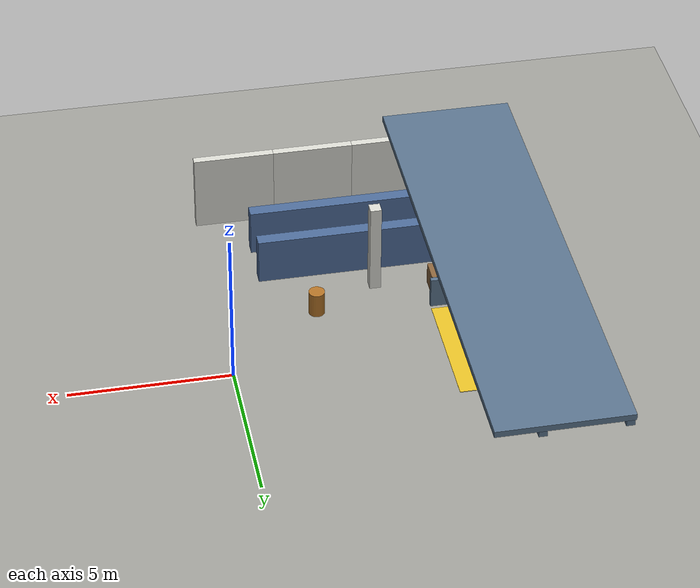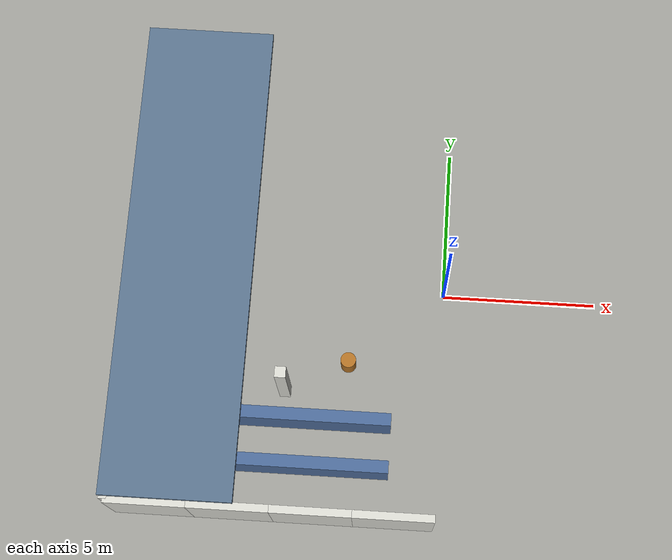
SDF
<sdf version="1.9">
 <world name="default">
  <model name="ground_plane">
   <static>true</static>
   <link name="link">
    <collision name="collision">
     <geometry><plane><normal>0 0 1</normal><size>200 200</size></plane></geometry>
     <surface><friction><ode><mu>1.0</mu><mu2>1.0</mu2></ode></friction></surface>
    </collision>
    <visual name="visual">
     <geometry><plane><normal>0 0 1</normal><size>200 200</size></plane></geometry>
     <material>
      <ambient>0.310 0.310 0.300 1</ambient>
      <diffuse>0.620 0.620 0.600 1</diffuse>
      <specular>0.05 0.05 0.05 1</specular>
      <pbr>
       <metal>
        <albedo_map>materials/textures/concrete.png</albedo_map>
        <metalness>0.0</metalness>
        <roughness>0.9</roughness>
       </metal>
      </pbr>
     </material>
    </visual>
   </link>
  </model>
  <model name="wall_south_0">
   <static>true</static>
   <pose>-8.85938 -7.62500 1.25000 0 0.000000 0</pose>
   <link name="link">
    <collision name="collision">
     <geometry><box><size>2.53125 0.25000 2.50000</size></box></geometry>
     <surface><friction><ode><mu>1.0</mu><mu2>1.0</mu2></ode></friction></surface>
    </collision>
    <visual name="visual">
     <geometry><box><size>2.53125 0.25000 2.50000</size></box></geometry>
     <material>
      <ambient>0.425 0.425 0.410 1</ambient>
      <diffuse>0.850 0.850 0.820 1</diffuse>
      <specular>0.1 0.1 0.1 1</specular>
      <pbr>
       <metal>
        <albedo_map>materials/textures/painted_wall.png</albedo_map>
        <metalness>0.0</metalness>
        <roughness>0.85</roughness>
       </metal>
      </pbr>
     </material>
    </visual>
   </link>
  </model>
  <model name="wall_south_1">
   <static>true</static>
   <pose>-6.32812 -7.62500 1.25000 0 0.000000 0</pose>
   <link name="link">
    <collision name="collision">
     <geometry><box><size>2.53125 0.25000 2.50000</size></box></geometry>
     <surface><friction><ode><mu>1.0</mu><mu2>1.0</mu2></ode></friction></surface>
    </collision>
    <visual name="visual">
     <geometry><box><size>2.53125 0.25000 2.50000</size></box></geometry>
     <material>
      <ambient>0.425 0.425 0.410 1</ambient>
      <diffuse>0.850 0.850 0.820 1</diffuse>
      <specular>0.1 0.1 0.1 1</specular>
      <pbr>
       <metal>
        <albedo_map>materials/textures/painted_wall.png</albedo_map>
        <metalness>0.0</metalness>
        <roughness>0.85</roughness>
       </metal>
      </pbr>
     </material>
    </visual>
   </link>
  </model>
  <model name="wall_south_2">
   <static>true</static>
   <pose>-3.79688 -7.62500 1.25000 0 0.000000 0</pose>
   <link name="link">
    <collision name="collision">
     <geometry><box><size>2.53125 0.25000 2.50000</size></box></geometry>
     <surface><friction><ode><mu>1.0</mu><mu2>1.0</mu2></ode></friction></surface>
    </collision>
    <visual name="visual">
     <geometry><box><size>2.53125 0.25000 2.50000</size></box></geometry>
     <material>
      <ambient>0.425 0.425 0.410 1</ambient>
      <diffuse>0.850 0.850 0.820 1</diffuse>
      <specular>0.1 0.1 0.1 1</specular>
      <pbr>
       <metal>
        <albedo_map>materials/textures/painted_wall.png</albedo_map>
        <metalness>0.0</metalness>
        <roughness>0.85</roughness>
       </metal>
      </pbr>
     </material>
    </visual>
   </link>
  </model>
  <model name="wall_south_3">
   <static>true</static>
   <pose>-1.26562 -7.62500 1.25000 0 0.000000 0</pose>
   <link name="link">
    <collision name="collision">
     <geometry><box><size>2.53125 0.25000 2.50000</size></box></geometry>
     <surface><friction><ode><mu>1.0</mu><mu2>1.0</mu2></ode></friction></surface>
    </collision>
    <visual name="visual">
     <geometry><box><size>2.53125 0.25000 2.50000</size></box></geometry>
     <material>
      <ambient>0.425 0.425 0.410 1</ambient>
      <diffuse>0.850 0.850 0.820 1</diffuse>
      <specular>0.1 0.1 0.1 1</specular>
      <pbr>
       <metal>
        <albedo_map>materials/textures/painted_wall.png</albedo_map>
        <metalness>0.0</metalness>
        <roughness>0.85</roughness>
       </metal>
      </pbr>
     </material>
    </visual>
   </link>
  </model>
  <model name="wall_west_0">
   <static>true</static>
   <pose>-10.12500 -6.35417 1.25000 0 0.000000 0</pose>
   <link name="link">
    <collision name="collision">
     <geometry><box><size>0.25000 2.54167 2.50000</size></box></geometry>
     <surface><friction><ode><mu>1.0</mu><mu2>1.0</mu2></ode></friction></surface>
    </collision>
    <visual name="visual">
     <geometry><box><size>0.25000 2.54167 2.50000</size></box></geometry>
     <material>
      <ambient>0.425 0.425 0.410 1</ambient>
      <diffuse>0.850 0.850 0.820 1</diffuse>
      <specular>0.1 0.1 0.1 1</specular>
      <pbr>
       <metal>
        <albedo_map>materials/textures/painted_wall.png</albedo_map>
        <metalness>0.0</metalness>
        <roughness>0.85</roughness>
       </metal>
      </pbr>
     </material>
    </visual>
   </link>
  </model>
  <model name="wall_west_1">
   <static>true</static>
   <pose>-10.12500 -3.81250 1.25000 0 0.000000 0</pose>
   <link name="link">
    <collision name="collision">
     <geometry><box><size>0.25000 2.54167 2.50000</size></box></geometry>
     <surface><friction><ode><mu>1.0</mu><mu2>1.0</mu2></ode></friction></surface>
    </collision>
    <visual name="visual">
     <geometry><box><size>0.25000 2.54167 2.50000</size></box></geometry>
     <material>
      <ambient>0.425 0.425 0.410 1</ambient>
      <diffuse>0.850 0.850 0.820 1</diffuse>
      <specular>0.1 0.1 0.1 1</specular>
      <pbr>
       <metal>
        <albedo_map>materials/textures/painted_wall.png</albedo_map>
        <metalness>0.0</metalness>
        <roughness>0.85</roughness>
       </metal>
      </pbr>
     </material>
    </visual>
   </link>
  </model>
  <model name="wall_west_2">
   <static>true</static>
   <pose>-10.12500 -1.27083 1.25000 0 0.000000 0</pose>
   <link name="link">
    <collision name="collision">
     <geometry><box><size>0.25000 2.54167 2.50000</size></box></geometry>
     <surface><friction><ode><mu>1.0</mu><mu2>1.0</mu2></ode></friction></surface>
    </collision>
    <visual name="visual">
     <geometry><box><size>0.25000 2.54167 2.50000</size></box></geometry>
     <material>
      <ambient>0.425 0.425 0.410 1</ambient>
      <diffuse>0.850 0.850 0.820 1</diffuse>
      <specular>0.1 0.1 0.1 1</specular>
      <pbr>
       <metal>
        <albedo_map>materials/textures/painted_wall.png</albedo_map>
        <metalness>0.0</metalness>
        <roughness>0.85</roughness>
       </metal>
      </pbr>
     </material>
    </visual>
   </link>
  </model>
  <model name="rack_s1a">
   <static>true</static>
   <pose>-5.25000 -4.50000 0.75000 0 0.000000 0</pose>
   <link name="link">
    <collision name="collision">
     <geometry><box><size>7.50000 0.40000 1.50000</size></box></geometry>
     <surface><friction><ode><mu>1.0</mu><mu2>1.0</mu2></ode></friction></surface>
    </collision>
    <visual name="visual">
     <geometry><box><size>7.50000 0.40000 1.50000</size></box></geometry>
     <material>
      <ambient>0.150 0.210 0.300 1</ambient>
      <diffuse>0.300 0.420 0.600 1</diffuse>
      <specular>0.1 0.1 0.1 1</specular>
      <pbr>
       <metal>
        <albedo_map>materials/textures/steel.png</albedo_map>
        <metalness>0.0</metalness>
        <roughness>0.85</roughness>
       </metal>
      </pbr>
     </material>
    </visual>
   </link>
  </model>
  <model name="rack_s2a">
   <static>true</static>
   <pose>-5.25000 -6.00000 0.75000 0 0.000000 0</pose>
   <link name="link">
    <collision name="collision">
     <geometry><box><size>7.50000 0.40000 1.50000</size></box></geometry>
     <surface><friction><ode><mu>1.0</mu><mu2>1.0</mu2></ode></friction></surface>
    </collision>
    <visual name="visual">
     <geometry><box><size>7.50000 0.40000 1.50000</size></box></geometry>
     <material>
      <ambient>0.150 0.210 0.300 1</ambient>
      <diffuse>0.300 0.420 0.600 1</diffuse>
      <specular>0.1 0.1 0.1 1</specular>
      <pbr>
       <metal>
        <albedo_map>materials/textures/steel.png</albedo_map>
        <metalness>0.0</metalness>
        <roughness>0.85</roughness>
       </metal>
      </pbr>
     </material>
    </visual>
   </link>
  </model>
  <model name="pillar_sw">
   <static>true</static>
   <pose>-5.00000 -3.50000 1.50000 0 0.000000 0</pose>
   <link name="link">
    <collision name="collision">
     <geometry><box><size>0.35000 0.35000 3.00000</size></box></geometry>
     <surface><friction><ode><mu>1.0</mu><mu2>1.0</mu2></ode></friction></surface>
    </collision>
    <visual name="visual">
     <geometry><box><size>0.35000 0.35000 3.00000</size></box></geometry>
     <material>
      <ambient>0.425 0.425 0.410 1</ambient>
      <diffuse>0.850 0.850 0.820 1</diffuse>
      <specular>0.1 0.1 0.1 1</specular>
      <pbr>
       <metal>
        <albedo_map>materials/textures/painted_wall.png</albedo_map>
        <metalness>0.0</metalness>
        <roughness>0.85</roughness>
       </metal>
      </pbr>
     </material>
    </visual>
   </link>
  </model>
  <model name="crate_w2">
   <static>true</static>
   <pose>-7.00000 -3.00000 0.35000 0 0.000000 0</pose>
   <link name="link">
    <collision name="collision">
     <geometry><box><size>0.70000 0.70000 0.70000</size></box></geometry>
     <surface><friction><ode><mu>1.0</mu><mu2>1.0</mu2></ode></friction></surface>
    </collision>
    <visual name="visual">
     <geometry><box><size>0.70000 0.70000 0.70000</size></box></geometry>
     <material>
      <ambient>0.275 0.200 0.120 1</ambient>
      <diffuse>0.550 0.400 0.240 1</diffuse>
      <specular>0.1 0.1 0.1 1</specular>
      <pbr>
       <metal>
        <albedo_map>materials/textures/crate.png</albedo_map>
        <metalness>0.0</metalness>
        <roughness>0.85</roughness>
       </metal>
      </pbr>
     </material>
    </visual>
   </link>
  </model>
  <model name="dock_bay">
   <static>true</static>
   <pose>-8.00000 0.00000 0.00000 0 0.000000 0</pose>
   <link name="link">
    <collision name="collision">
     <geometry><box><size>3.00000 4.00000 0.02000</size></box></geometry>
     <surface><friction><ode><mu>1.0</mu><mu2>1.0</mu2></ode></friction></surface>
    </collision>
    <visual name="visual">
     <geometry><box><size>3.00000 4.00000 0.02000</size></box></geometry>
     <material>
      <ambient>0.450 0.375 0.075 1</ambient>
      <diffuse>0.900 0.750 0.150 1</diffuse>
      <specular>0.1 0.1 0.1 1</specular>
     </material>
    </visual>
   </link>
  </model>
  <model name="dock_wall">
   <static>true</static>
   <pose>-9.40000 0.00000 0.60000 0 0.000000 0</pose>
   <link name="link">
    <collision name="collision">
     <geometry><box><size>0.30000 4.40000 1.20000</size></box></geometry>
     <surface><friction><ode><mu>1.0</mu><mu2>1.0</mu2></ode></friction></surface>
    </collision>
    <visual name="visual">
     <geometry><box><size>0.30000 4.40000 1.20000</size></box></geometry>
     <material>
      <ambient>0.175 0.225 0.275 1</ambient>
      <diffuse>0.350 0.450 0.550 1</diffuse>
      <specular>0.1 0.1 0.1 1</specular>
      <pbr>
       <metal>
        <albedo_map>materials/textures/steel.png</albedo_map>
        <metalness>0.0</metalness>
        <roughness>0.85</roughness>
       </metal>
      </pbr>
     </material>
    </visual>
   </link>
  </model>
  <model name="dock_rail_south">
   <static>true</static>
   <pose>-7.70000 -2.20000 0.50000 0 0.000000 0</pose>
   <link name="link">
    <collision name="collision">
     <geometry><box><size>2.40000 0.15000 1.00000</size></box></geometry>
     <surface><friction><ode><mu>1.0</mu><mu2>1.0</mu2></ode></friction></surface>
    </collision>
    <visual name="visual">
     <geometry><box><size>2.40000 0.15000 1.00000</size></box></geometry>
     <material>
      <ambient>0.175 0.225 0.275 1</ambient>
      <diffuse>0.350 0.450 0.550 1</diffuse>
      <specular>0.1 0.1 0.1 1</specular>
      <pbr>
       <metal>
        <albedo_map>materials/textures/steel.png</albedo_map>
        <metalness>0.0</metalness>
        <roughness>0.85</roughness>
       </metal>
      </pbr>
     </material>
    </visual>
   </link>
  </model>
  <model name="roof_0">
   <static>true</static>
   <pose>-8.10000 0.00000 3.30000 0 0.000000 0</pose>
   <link name="link">
    <collision name="collision">
     <geometry><box><size>4.05000 15.25000 0.20000</size></box></geometry>
     <surface><friction><ode><mu>1.0</mu><mu2>1.0</mu2></ode></friction></surface>
    </collision>
    <visual name="visual">
     <geometry><box><size>4.05000 15.25000 0.20000</size></box></geometry>
     <material>
      <ambient>0.175 0.225 0.275 1</ambient>
      <diffuse>0.350 0.450 0.550 1</diffuse>
      <specular>0.1 0.1 0.1 1</specular>
      <pbr>
       <metal>
        <albedo_map>materials/textures/steel.png</albedo_map>
        <metalness>0.0</metalness>
        <roughness>0.85</roughness>
       </metal>
      </pbr>
     </material>
    </visual>
   </link>
  </model>
  <model name="truss_0">
   <static>true</static>
   <pose>-10.00000 0.00000 3.05000 0 0.000000 0</pose>
   <link name="link">
    <collision name="collision">
     <geometry><box><size>0.25000 15.00000 0.30000</size></box></geometry>
     <surface><friction><ode><mu>1.0</mu><mu2>1.0</mu2></ode></friction></surface>
    </collision>
    <visual name="visual">
     <geometry><box><size>0.25000 15.00000 0.30000</size></box></geometry>
     <material>
      <ambient>0.175 0.225 0.275 1</ambient>
      <diffuse>0.350 0.450 0.550 1</diffuse>
      <specular>0.1 0.1 0.1 1</specular>
      <pbr>
       <metal>
        <albedo_map>materials/textures/steel.png</albedo_map>
        <metalness>0.0</metalness>
        <roughness>0.85</roughness>
       </metal>
      </pbr>
     </material>
    </visual>
   </link>
  </model>
  <model name="truss_1">
   <static>true</static>
   <pose>-7.50000 0.00000 3.05000 0 0.000000 0</pose>
   <link name="link">
    <collision name="collision">
     <geometry><box><size>0.25000 15.00000 0.30000</size></box></geometry>
     <surface><friction><ode><mu>1.0</mu><mu2>1.0</mu2></ode></friction></surface>
    </collision>
    <visual name="visual">
     <geometry><box><size>0.25000 15.00000 0.30000</size></box></geometry>
     <material>
      <ambient>0.175 0.225 0.275 1</ambient>
      <diffuse>0.350 0.450 0.550 1</diffuse>
      <specular>0.1 0.1 0.1 1</specular>
      <pbr>
       <metal>
        <albedo_map>materials/textures/steel.png</albedo_map>
        <metalness>0.0</metalness>
        <roughness>0.85</roughness>
       </metal>
      </pbr>
     </material>
    </visual>
   </link>
  </model>
  <model name="barrel_south">
   <static>true</static>
   <pose>-3.00000 -2.50000 0.40000 0 0 0</pose>
   <link name="link">
    <collision name="collision">
     <geometry><cylinder><radius>0.25</radius><length>0.8</length></cylinder></geometry>
     <surface><friction><ode><mu>1.0</mu><mu2>1.0</mu2></ode></friction></surface>
    </collision>
    <visual name="visual">
     <geometry><cylinder><radius>0.25</radius><length>0.8</length></cylinder></geometry>
     <material>
      <ambient>0.350 0.225 0.075 1</ambient>
      <diffuse>0.700 0.450 0.150 1</diffuse>
      <specular>0.1 0.1 0.1 1</specular>
      <pbr>
       <metal>
        <albedo_map>materials/textures/steel.png</albedo_map>
        <metalness>0.0</metalness>
        <roughness>0.85</roughness>
       </metal>
      </pbr>
     </material>
    </visual>
   </link>
  </model>
 </world>
</sdf>
